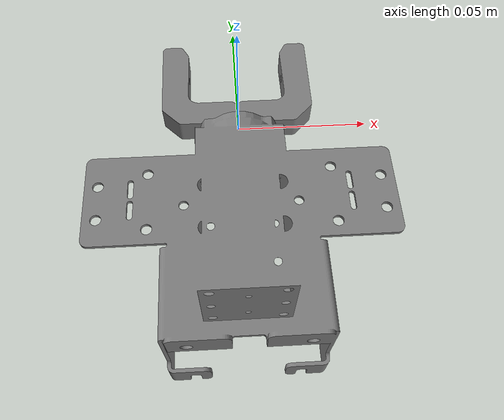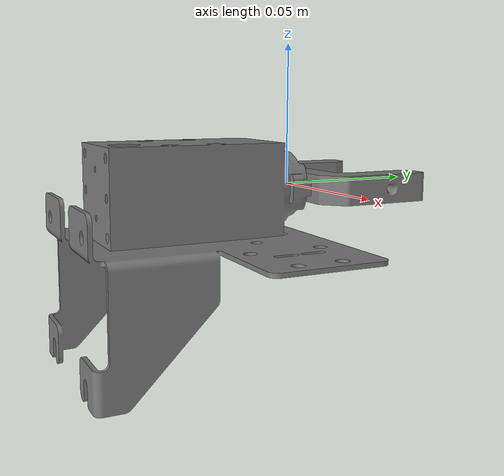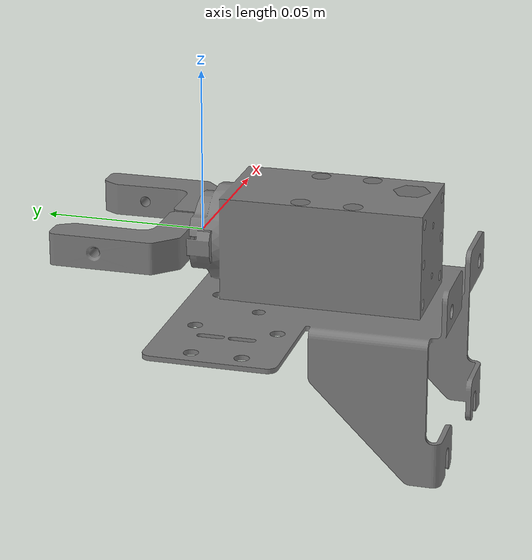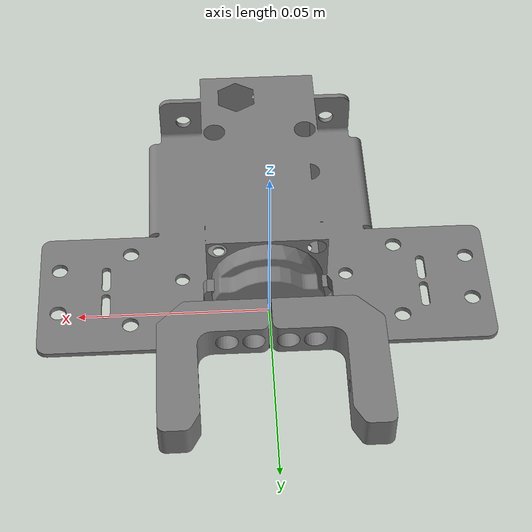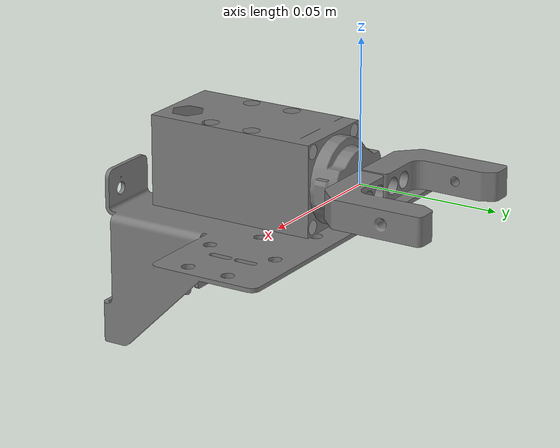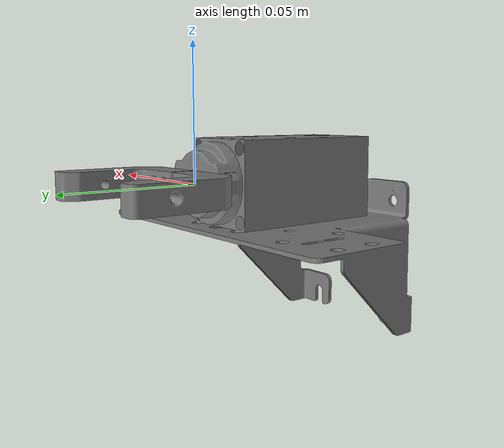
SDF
<?xml version="1.0" ?>
<sdf version="1.4">
  <model name="robotino_gripper">
	<static>false</static>
    <link name="body">
        <pose>0.0 -0.0435 -0.025 0 0 0</pose>
        <inertial>
            <inertia>
                <ixx>0.01</ixx>
                <ixy>0</ixy>
                <ixz>0</ixz>
                <iyy>0.01</iyy>
                <iyz>0</iyz>
                <izz>0.01</izz>
            </inertia>
            <mass>0.5</mass>
        </inertial>
      <visual name="visual">
        <pose>0 0.04 -0.175 0 0 0</pose>
        <geometry>
          <mesh>
            <uri>model://robotino_gripper/meshes/robotino_gripper_base.dae</uri>
          </mesh>
        </geometry>
        <cast_shadows>false</cast_shadows>
      </visual>
      <collision name="collision">

        <geometry>
		    <box>
                 <size>0.08 0.08 0.08</size>
		    </box>
        </geometry>
      </collision>
    </link>

    <link name="finger-left">
        <pose>-0.0005 0.0 0.0 0 0 0</pose>
        <inertial>
            <inertia>
                <ixx>0.01</ixx>
                <ixy>0</ixy>
                <ixz>0</ixz>
                <iyy>0.01</iyy>
                <iyz>0</iyz>
                <izz>0.01</izz>
            </inertia>
            <mass>0.1</mass>
        </inertial>
      <visual name="visual">
        <pose>0.013 -0.004 -0.20 0 0 0</pose>
        <geometry>
          <mesh>
            <uri>model://robotino_gripper/meshes/robotino_gripper_finger.dae</uri>
          </mesh>
        </geometry>
        <cast_shadows>false</cast_shadows>
      </visual>

        <collision name="collision">
        	<pose>-0.014 0.006 0 0 0 0</pose>
            <geometry>
                <box>
                    <size>0.028 0.008 0.01</size>
                </box>
            </geometry>
        </collision>
        <collision name="collision">
        	<pose>-0.023 0.021 0 0 0 0</pose>
            <geometry>
                <box>
                    <size>0.01 0.036 0.01</size>
                </box>
            </geometry>
        </collision>
    </link>

    <link name="finger-right">
        <pose>0.0005 0.0 0.0 0 3.1415 0</pose>
        <inertial>
            <inertia>
                <ixx>0.01</ixx>
                <ixy>0</ixy>
                <ixz>0</ixz>
                <iyy>0.01</iyy>
                <iyz>0</iyz>
                <izz>0.01</izz>
            </inertia>
            <mass>0.1</mass>
        </inertial>
      <visual name="visual">
        <pose>0.013 -0.004 -0.20 0 0 0</pose>
        <geometry>
          <mesh>
            <uri>model://robotino_gripper/meshes/robotino_gripper_finger.dae</uri>
          </mesh>
        </geometry>
        <cast_shadows>false</cast_shadows>
      </visual>

        <collision name="collision">
        	<pose>-0.014 0.006 0 0 0 0</pose>
            <geometry>
                <box>
                    <size>0.028 0.008 0.01</size>
                </box>
            </geometry>
        </collision>
        <collision name="collision">
        	<pose>-0.023 0.021 0 0 0 0</pose>
            <geometry>
                <box>
                    <size>0.01 0.036 0.01</size>
                </box>
            </geometry>
        </collision>
    </link>

    <joint name="left_finger_move" type="prismatic">
        <child>finger-left</child>
        <parent>body</parent>
        <axis>
            <limit>
                <lower>0</lower>
                <upper>0.004</upper>
            </limit>
            <xyz>1 0 0</xyz>
        </axis>
    </joint>

    <joint name="right_finger_move" type="prismatic">
        <child>finger-right</child>
        <parent>body</parent>
        <axis>
            <limit>
                <lower>0</lower>
                <upper>0.004</upper>
            </limit>
            <xyz>1 0 0</xyz>
        </axis>
    </joint>

    <link name="gripper_grab">
          <pose>0 0.03 0.0 0 0 0</pose>
    </link>

    <plugin name="Gripper" filename="libgripper.so"/>

  </model>
</sdf>
